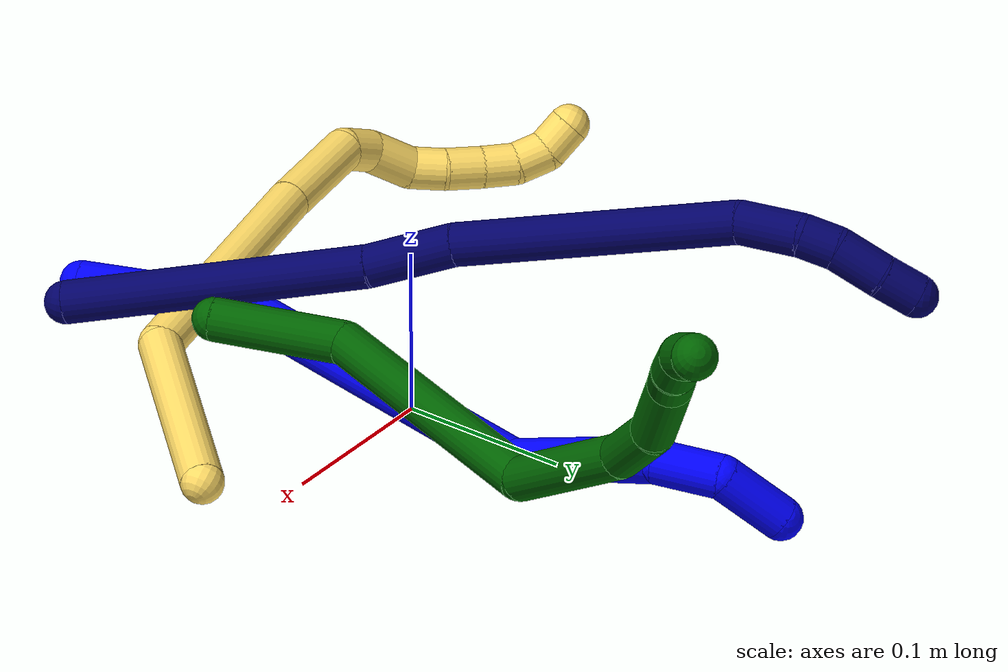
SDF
<sdf version="1.7">
 <world name="default">
  <model name="1">
   <static>0</static>
   <link name="1">
    <collision name="collision-cylinder-e_1_1_4">
     <pose>-0.012604 0.040449 0.024734 -1.02197 -0.259829 0.146238</pose>
     <geometry><cylinder><radius>0.0125</radius><length>0.098118</length></cylinder></geometry>
     <surface>
      <friction><ode><mu>1.16</mu><mu2>1.16</mu2><slip1>0</slip1><slip2>0</slip2></ode></friction>
      <contact><ode><kp>1e+06</kp><kd>1</kd><max_vel>0</max_vel><min_depth>0.001</min_depth></ode></contact>
     </surface>
    </collision>
    <visual name="visual-cylinder-e_1_1_4">
     <pose>-0.012604 0.040449 0.024734 -1.02197 -0.259829 0.146238</pose>
     <geometry><cylinder><radius>0.0125</radius><length>0.098118</length></cylinder></geometry>
     <material><ambient>0 0 1 1</ambient></material>
    </visual>
    <collision name="collision-cylinder-e_2_4_5">
     <pose>-0.001591 0.156109 0.131781 -0.740343 0.208727 -0.081249</pose>
     <geometry><cylinder><radius>0.0125</radius><length>0.227944</length></cylinder></geometry>
     <surface>
      <friction><ode><mu>1.16</mu><mu2>1.16</mu2><slip1>0</slip1><slip2>0</slip2></ode></friction>
      <contact><ode><kp>1e+06</kp><kd>1</kd><max_vel>0</max_vel><min_depth>0.001</min_depth></ode></contact>
     </surface>
    </collision>
    <visual name="visual-cylinder-e_2_4_5">
     <pose>-0.001591 0.156109 0.131781 -0.740343 0.208727 -0.081249</pose>
     <geometry><cylinder><radius>0.0125</radius><length>0.227944</length></cylinder></geometry>
     <material><ambient>0 0 1 1</ambient></material>
    </visual>
    <collision name="collision-cylinder-e_3_5_6">
     <pose>0.015587 0.247237 0.233793 -0.679602 -0.248928 0.088399</pose>
     <geometry><cylinder><radius>0.0125</radius><length>0.052265</length></cylinder></geometry>
     <surface>
      <friction><ode><mu>1.16</mu><mu2>1.16</mu2><slip1>0</slip1><slip2>0</slip2></ode></friction>
      <contact><ode><kp>1e+06</kp><kd>1</kd><max_vel>0</max_vel><min_depth>0.001</min_depth></ode></contact>
     </surface>
    </collision>
    <visual name="visual-cylinder-e_3_5_6">
     <pose>0.015587 0.247237 0.233793 -0.679602 -0.248928 0.088399</pose>
     <geometry><cylinder><radius>0.0125</radius><length>0.052265</length></cylinder></geometry>
     <material><ambient>0 0 1 1</ambient></material>
    </visual>
    <collision name="collision-cylinder-e_4_6_7">
     <pose>0.006537 0.274478 0.271198 -0.569 -0.123623 0.036194</pose>
     <geometry><cylinder><radius>0.0125</radius><length>0.042355</length></cylinder></geometry>
     <surface>
      <friction><ode><mu>1.16</mu><mu2>1.16</mu2><slip1>0</slip1><slip2>0</slip2></ode></friction>
      <contact><ode><kp>1e+06</kp><kd>1</kd><max_vel>0</max_vel><min_depth>0.001</min_depth></ode></contact>
     </surface>
    </collision>
    <visual name="visual-cylinder-e_4_6_7">
     <pose>0.006537 0.274478 0.271198 -0.569 -0.123623 0.036194</pose>
     <geometry><cylinder><radius>0.0125</radius><length>0.042355</length></cylinder></geometry>
     <material><ambient>0 0 1 1</ambient></material>
    </visual>
    <collision name="collision-cylinder-e_5_7_8">
     <pose>0.000444 0.301984 0.298541 -1.03362 -0.182818 0.104098</pose>
     <geometry><cylinder><radius>0.0125</radius><length>0.038309</length></cylinder></geometry>
     <surface>
      <friction><ode><mu>1.16</mu><mu2>1.16</mu2><slip1>0</slip1><slip2>0</slip2></ode></friction>
      <contact><ode><kp>1e+06</kp><kd>1</kd><max_vel>0</max_vel><min_depth>0.001</min_depth></ode></contact>
     </surface>
    </collision>
    <visual name="visual-cylinder-e_5_7_8">
     <pose>0.000444 0.301984 0.298541 -1.03362 -0.182818 0.104098</pose>
     <geometry><cylinder><radius>0.0125</radius><length>0.038309</length></cylinder></geometry>
     <material><ambient>0 0 1 1</ambient></material>
    </visual>
    <collision name="collision-cylinder-e_6_8_2">
     <pose>-0.003802 0.338472 0.305439 -1.7049 -0.03724 0.0426</pose>
     <geometry><cylinder><radius>0.0125</radius><length>0.041008</length></cylinder></geometry>
     <surface>
      <friction><ode><mu>1.16</mu><mu2>1.16</mu2><slip1>0</slip1><slip2>0</slip2></ode></friction>
      <contact><ode><kp>1e+06</kp><kd>1</kd><max_vel>0</max_vel><min_depth>0.001</min_depth></ode></contact>
     </surface>
    </collision>
    <visual name="visual-cylinder-e_6_8_2">
     <pose>-0.003802 0.338472 0.305439 -1.7049 -0.03724 0.0426</pose>
     <geometry><cylinder><radius>0.0125</radius><length>0.041008</length></cylinder></geometry>
     <material><ambient>0 0 1 1</ambient></material>
    </visual>
    <collision name="collision-sphere-2">
     <pose>-0.004565 0.358778 0.3027 0 -0 0</pose>
     <geometry><sphere><radius>0.0125</radius></sphere></geometry>
     <surface>
      <friction><ode><mu>1.16</mu><mu2>1.16</mu2><slip1>0</slip1><slip2>0</slip2></ode></friction>
      <contact><ode><kp>1e+06</kp><kd>1</kd><max_vel>0</max_vel><min_depth>0.001</min_depth></ode></contact>
     </surface>
    </collision>
    <visual name="visual-sphere-2">
     <pose>-0.004565 0.358778 0.3027 0 -0 0</pose>
     <geometry><sphere><radius>0.0125</radius></sphere></geometry>
     <material><ambient>0 0 1 1</ambient></material>
    </visual>
    <collision name="collision-sphere-4">
     <pose>-0.025208 0.080899 0.049469 0 -0 0</pose>
     <geometry><sphere><radius>0.0125</radius></sphere></geometry>
     <surface>
      <friction><ode><mu>1.16</mu><mu2>1.16</mu2><slip1>0</slip1><slip2>0</slip2></ode></friction>
      <contact><ode><kp>1e+06</kp><kd>1</kd><max_vel>0</max_vel><min_depth>0.001</min_depth></ode></contact>
     </surface>
    </collision>
    <visual name="visual-sphere-4">
     <pose>-0.025208 0.080899 0.049469 0 -0 0</pose>
     <geometry><sphere><radius>0.0125</radius></sphere></geometry>
     <material><ambient>0 0 1 1</ambient></material>
    </visual>
    <collision name="collision-sphere-1">
     <geometry><sphere><radius>0.0125</radius></sphere></geometry>
     <surface>
      <friction><ode><mu>1.16</mu><mu2>1.16</mu2><slip1>0</slip1><slip2>0</slip2></ode></friction>
      <contact><ode><kp>1e+06</kp><kd>1</kd><max_vel>0</max_vel><min_depth>0.001</min_depth></ode></contact>
     </surface>
    </collision>
    <visual name="visual-sphere-1">
     <geometry><sphere><radius>0.0125</radius></sphere></geometry>
     <material><ambient>0 0 1 1</ambient></material>
    </visual>
    <collision name="collision-sphere-8">
     <pose>-0.003038 0.318166 0.308179 0 -0 0</pose>
     <geometry><sphere><radius>0.0125</radius></sphere></geometry>
     <surface>
      <friction><ode><mu>1.16</mu><mu2>1.16</mu2><slip1>0</slip1><slip2>0</slip2></ode></friction>
      <contact><ode><kp>1e+06</kp><kd>1</kd><max_vel>0</max_vel><min_depth>0.001</min_depth></ode></contact>
     </surface>
    </collision>
    <visual name="visual-sphere-8">
     <pose>-0.003038 0.318166 0.308179 0 -0 0</pose>
     <geometry><sphere><radius>0.0125</radius></sphere></geometry>
     <material><ambient>0 0 1 1</ambient></material>
    </visual>
    <collision name="collision-sphere-5">
     <pose>0.022025 0.231319 0.214093 0 -0 0</pose>
     <geometry><sphere><radius>0.0125</radius></sphere></geometry>
     <surface>
      <friction><ode><mu>1.16</mu><mu2>1.16</mu2><slip1>0</slip1><slip2>0</slip2></ode></friction>
      <contact><ode><kp>1e+06</kp><kd>1</kd><max_vel>0</max_vel><min_depth>0.001</min_depth></ode></contact>
     </surface>
    </collision>
    <visual name="visual-sphere-5">
     <pose>0.022025 0.231319 0.214093 0 -0 0</pose>
     <geometry><sphere><radius>0.0125</radius></sphere></geometry>
     <material><ambient>0 0 1 1</ambient></material>
    </visual>
    <collision name="collision-sphere-6">
     <pose>0.009149 0.263155 0.253493 0 -0 0</pose>
     <geometry><sphere><radius>0.0125</radius></sphere></geometry>
     <surface>
      <friction><ode><mu>1.16</mu><mu2>1.16</mu2><slip1>0</slip1><slip2>0</slip2></ode></friction>
      <contact><ode><kp>1e+06</kp><kd>1</kd><max_vel>0</max_vel><min_depth>0.001</min_depth></ode></contact>
     </surface>
    </collision>
    <visual name="visual-sphere-6">
     <pose>0.009149 0.263155 0.253493 0 -0 0</pose>
     <geometry><sphere><radius>0.0125</radius></sphere></geometry>
     <material><ambient>0 0 1 1</ambient></material>
    </visual>
    <collision name="collision-sphere-7">
     <pose>0.003926 0.285801 0.288903 0 -0 0</pose>
     <geometry><sphere><radius>0.0125</radius></sphere></geometry>
     <surface>
      <friction><ode><mu>1.16</mu><mu2>1.16</mu2><slip1>0</slip1><slip2>0</slip2></ode></friction>
      <contact><ode><kp>1e+06</kp><kd>1</kd><max_vel>0</max_vel><min_depth>0.001</min_depth></ode></contact>
     </surface>
    </collision>
    <visual name="visual-sphere-7">
     <pose>0.003926 0.285801 0.288903 0 -0 0</pose>
     <geometry><sphere><radius>0.0125</radius></sphere></geometry>
     <material><ambient>0 0 1 1</ambient></material>
    </visual>
    <inertial>
     <pose>-0.001294 0.179098 0.160267 0 -0 0</pose>
     <mass>0.5</mass>
     <inertia>
      <ixx>0.001019</ixx>
      <ixy>0</ixy>
      <ixz>0</ixz>
      <iyy>0.000772</iyy>
      <iyz>0</iyz>
      <izz>-0.000906</izz>
     </inertia>
    </inertial>
   </link>
   <pose>0.014996 -0.226043 0.011495 -0.705297 0.535129 0.046117</pose>
  </model>
  <model name="5">
   <static>0</static>
   <link name="5">
    <collision name="collision-cylinder-e_1_1_4">
     <pose>-0.040937 -0.013927 0.043755 0.308165 -0.728119 -0.118225</pose>
     <geometry><cylinder><radius>0.0125</radius><length>0.123033</length></cylinder></geometry>
     <surface>
      <friction><ode><mu>1.16</mu><mu2>1.16</mu2><slip1>0</slip1><slip2>0</slip2></ode></friction>
      <contact><ode><kp>1e+06</kp><kd>1</kd><max_vel>0</max_vel><min_depth>0.001</min_depth></ode></contact>
     </surface>
    </collision>
    <visual name="visual-cylinder-e_1_1_4">
     <pose>-0.040937 -0.013927 0.043755 0.308165 -0.728119 -0.118225</pose>
     <geometry><cylinder><radius>0.0125</radius><length>0.123033</length></cylinder></geometry>
     <material><ambient>1 0.858824 0.4 1</ambient></material>
    </visual>
    <collision name="collision-cylinder-e_2_4_5">
     <pose>-0.106438 -0.003813 0.158946 -0.324634 -0.315029 0.052008</pose>
     <geometry><cylinder><radius>0.0125</radius><length>0.158551</length></cylinder></geometry>
     <surface>
      <friction><ode><mu>1.16</mu><mu2>1.16</mu2><slip1>0</slip1><slip2>0</slip2></ode></friction>
      <contact><ode><kp>1e+06</kp><kd>1</kd><max_vel>0</max_vel><min_depth>0.001</min_depth></ode></contact>
     </surface>
    </collision>
    <visual name="visual-cylinder-e_2_4_5">
     <pose>-0.106438 -0.003813 0.158946 -0.324634 -0.315029 0.052008</pose>
     <geometry><cylinder><radius>0.0125</radius><length>0.158551</length></cylinder></geometry>
     <material><ambient>1 0.858824 0.4 1</ambient></material>
    </visual>
    <collision name="collision-cylinder-e_3_5_6">
     <pose>-0.140408 0.031616 0.258768 -0.381532 -0.298401 0.058041</pose>
     <geometry><cylinder><radius>0.0125</radius><length>0.063995</length></cylinder></geometry>
     <surface>
      <friction><ode><mu>1.16</mu><mu2>1.16</mu2><slip1>0</slip1><slip2>0</slip2></ode></friction>
      <contact><ode><kp>1e+06</kp><kd>1</kd><max_vel>0</max_vel><min_depth>0.001</min_depth></ode></contact>
     </surface>
    </collision>
    <visual name="visual-cylinder-e_3_5_6">
     <pose>-0.140408 0.031616 0.258768 -0.381532 -0.298401 0.058041</pose>
     <geometry><cylinder><radius>0.0125</radius><length>0.063995</length></cylinder></geometry>
     <material><ambient>1 0.858824 0.4 1</ambient></material>
    </visual>
    <collision name="collision-cylinder-e_4_6_7">
     <pose>-0.152702 0.051463 0.293064 -0.960914 -0.272752 0.142801</pose>
     <geometry><cylinder><radius>0.0125</radius><length>0.021433</length></cylinder></geometry>
     <surface>
      <friction><ode><mu>1.16</mu><mu2>1.16</mu2><slip1>0</slip1><slip2>0</slip2></ode></friction>
      <contact><ode><kp>1e+06</kp><kd>1</kd><max_vel>0</max_vel><min_depth>0.001</min_depth></ode></contact>
     </surface>
    </collision>
    <visual name="visual-cylinder-e_4_6_7">
     <pose>-0.152702 0.051463 0.293064 -0.960914 -0.272752 0.142801</pose>
     <geometry><cylinder><radius>0.0125</radius><length>0.021433</length></cylinder></geometry>
     <material><ambient>1 0.858824 0.4 1</ambient></material>
    </visual>
    <collision name="collision-cylinder-e_5_7_8">
     <pose>-0.155901 0.073881 0.302772 -1.30518 -0.021619 0.016524</pose>
     <geometry><cylinder><radius>0.0125</radius><length>0.028938</length></cylinder></geometry>
     <surface>
      <friction><ode><mu>1.16</mu><mu2>1.16</mu2><slip1>0</slip1><slip2>0</slip2></ode></friction>
      <contact><ode><kp>1e+06</kp><kd>1</kd><max_vel>0</max_vel><min_depth>0.001</min_depth></ode></contact>
     </surface>
    </collision>
    <visual name="visual-cylinder-e_5_7_8">
     <pose>-0.155901 0.073881 0.302772 -1.30518 -0.021619 0.016524</pose>
     <geometry><cylinder><radius>0.0125</radius><length>0.028938</length></cylinder></geometry>
     <material><ambient>1 0.858824 0.4 1</ambient></material>
    </visual>
    <collision name="collision-cylinder-e_6_8_9">
     <pose>-0.151945 0.096188 0.310953 -1.08726 0.425139 -0.25942</pose>
     <geometry><cylinder><radius>0.0125</radius><length>0.020702</length></cylinder></geometry>
     <surface>
      <friction><ode><mu>1.16</mu><mu2>1.16</mu2><slip1>0</slip1><slip2>0</slip2></ode></friction>
      <contact><ode><kp>1e+06</kp><kd>1</kd><max_vel>0</max_vel><min_depth>0.001</min_depth></ode></contact>
     </surface>
    </collision>
    <visual name="visual-cylinder-e_6_8_9">
     <pose>-0.151945 0.096188 0.310953 -1.08726 0.425139 -0.25942</pose>
     <geometry><cylinder><radius>0.0125</radius><length>0.020702</length></cylinder></geometry>
     <material><ambient>1 0.858824 0.4 1</ambient></material>
    </visual>
    <collision name="collision-cylinder-e_7_9_10">
     <pose>-0.14459 0.113222 0.321606 -0.945552 0.280487 -0.144157</pose>
     <geometry><cylinder><radius>0.0125</radius><length>0.022293</length></cylinder></geometry>
     <surface>
      <friction><ode><mu>1.16</mu><mu2>1.16</mu2><slip1>0</slip1><slip2>0</slip2></ode></friction>
      <contact><ode><kp>1e+06</kp><kd>1</kd><max_vel>0</max_vel><min_depth>0.001</min_depth></ode></contact>
     </surface>
    </collision>
    <visual name="visual-cylinder-e_7_9_10">
     <pose>-0.14459 0.113222 0.321606 -0.945552 0.280487 -0.144157</pose>
     <geometry><cylinder><radius>0.0125</radius><length>0.022293</length></cylinder></geometry>
     <material><ambient>1 0.858824 0.4 1</ambient></material>
    </visual>
    <collision name="collision-cylinder-e_8_10_11">
     <pose>-0.137825 0.129633 0.333814 -0.915483 0.360983 -0.179309</pose>
     <geometry><cylinder><radius>0.0125</radius><length>0.020833</length></cylinder></geometry>
     <surface>
      <friction><ode><mu>1.16</mu><mu2>1.16</mu2><slip1>0</slip1><slip2>0</slip2></ode></friction>
      <contact><ode><kp>1e+06</kp><kd>1</kd><max_vel>0</max_vel><min_depth>0.001</min_depth></ode></contact>
     </surface>
    </collision>
    <visual name="visual-cylinder-e_8_10_11">
     <pose>-0.137825 0.129633 0.333814 -0.915483 0.360983 -0.179309</pose>
     <geometry><cylinder><radius>0.0125</radius><length>0.020833</length></cylinder></geometry>
     <material><ambient>1 0.858824 0.4 1</ambient></material>
    </visual>
    <collision name="collision-cylinder-e_9_11_12">
     <pose>-0.130393 0.142562 0.347504 -0.591168 0.382258 -0.117702</pose>
     <geometry><cylinder><radius>0.0125</radius><length>0.020124</length></cylinder></geometry>
     <surface>
      <friction><ode><mu>1.16</mu><mu2>1.16</mu2><slip1>0</slip1><slip2>0</slip2></ode></friction>
      <contact><ode><kp>1e+06</kp><kd>1</kd><max_vel>0</max_vel><min_depth>0.001</min_depth></ode></contact>
     </surface>
    </collision>
    <visual name="visual-cylinder-e_9_11_12">
     <pose>-0.130393 0.142562 0.347504 -0.591168 0.382258 -0.117702</pose>
     <geometry><cylinder><radius>0.0125</radius><length>0.020124</length></cylinder></geometry>
     <material><ambient>1 0.858824 0.4 1</ambient></material>
    </visual>
    <collision name="collision-cylinder-e_10_12_2">
     <pose>-0.12194 0.148402 0.364115 -0.071791 0.486728 -0.017832</pose>
     <geometry><cylinder><radius>0.0125</radius><length>0.020097</length></cylinder></geometry>
     <surface>
      <friction><ode><mu>1.16</mu><mu2>1.16</mu2><slip1>0</slip1><slip2>0</slip2></ode></friction>
      <contact><ode><kp>1e+06</kp><kd>1</kd><max_vel>0</max_vel><min_depth>0.001</min_depth></ode></contact>
     </surface>
    </collision>
    <visual name="visual-cylinder-e_10_12_2">
     <pose>-0.12194 0.148402 0.364115 -0.071791 0.486728 -0.017832</pose>
     <geometry><cylinder><radius>0.0125</radius><length>0.020097</length></cylinder></geometry>
     <material><ambient>1 0.858824 0.4 1</ambient></material>
    </visual>
    <collision name="collision-sphere-2">
     <pose>-0.117239 0.14904 0.372973 0 -0 0</pose>
     <geometry><sphere><radius>0.0125</radius></sphere></geometry>
     <surface>
      <friction><ode><mu>1.16</mu><mu2>1.16</mu2><slip1>0</slip1><slip2>0</slip2></ode></friction>
      <contact><ode><kp>1e+06</kp><kd>1</kd><max_vel>0</max_vel><min_depth>0.001</min_depth></ode></contact>
     </surface>
    </collision>
    <visual name="visual-sphere-2">
     <pose>-0.117239 0.14904 0.372973 0 -0 0</pose>
     <geometry><sphere><radius>0.0125</radius></sphere></geometry>
     <material><ambient>1 0.858824 0.4 1</ambient></material>
    </visual>
    <collision name="collision-sphere-12">
     <pose>-0.12664 0.147765 0.355256 0 -0 0</pose>
     <geometry><sphere><radius>0.0125</radius></sphere></geometry>
     <surface>
      <friction><ode><mu>1.16</mu><mu2>1.16</mu2><slip1>0</slip1><slip2>0</slip2></ode></friction>
      <contact><ode><kp>1e+06</kp><kd>1</kd><max_vel>0</max_vel><min_depth>0.001</min_depth></ode></contact>
     </surface>
    </collision>
    <visual name="visual-sphere-12">
     <pose>-0.12664 0.147765 0.355256 0 -0 0</pose>
     <geometry><sphere><radius>0.0125</radius></sphere></geometry>
     <material><ambient>1 0.858824 0.4 1</ambient></material>
    </visual>
    <collision name="collision-sphere-11">
     <pose>-0.134146 0.137359 0.339753 0 -0 0</pose>
     <geometry><sphere><radius>0.0125</radius></sphere></geometry>
     <surface>
      <friction><ode><mu>1.16</mu><mu2>1.16</mu2><slip1>0</slip1><slip2>0</slip2></ode></friction>
      <contact><ode><kp>1e+06</kp><kd>1</kd><max_vel>0</max_vel><min_depth>0.001</min_depth></ode></contact>
     </surface>
    </collision>
    <visual name="visual-sphere-11">
     <pose>-0.134146 0.137359 0.339753 0 -0 0</pose>
     <geometry><sphere><radius>0.0125</radius></sphere></geometry>
     <material><ambient>1 0.858824 0.4 1</ambient></material>
    </visual>
    <collision name="collision-sphere-10">
     <pose>-0.141504 0.121906 0.327875 0 -0 0</pose>
     <geometry><sphere><radius>0.0125</radius></sphere></geometry>
     <surface>
      <friction><ode><mu>1.16</mu><mu2>1.16</mu2><slip1>0</slip1><slip2>0</slip2></ode></friction>
      <contact><ode><kp>1e+06</kp><kd>1</kd><max_vel>0</max_vel><min_depth>0.001</min_depth></ode></contact>
     </surface>
    </collision>
    <visual name="visual-sphere-10">
     <pose>-0.141504 0.121906 0.327875 0 -0 0</pose>
     <geometry><sphere><radius>0.0125</radius></sphere></geometry>
     <material><ambient>1 0.858824 0.4 1</ambient></material>
    </visual>
    <collision name="collision-sphere-9">
     <pose>-0.147676 0.104537 0.315337 0 -0 0</pose>
     <geometry><sphere><radius>0.0125</radius></sphere></geometry>
     <surface>
      <friction><ode><mu>1.16</mu><mu2>1.16</mu2><slip1>0</slip1><slip2>0</slip2></ode></friction>
      <contact><ode><kp>1e+06</kp><kd>1</kd><max_vel>0</max_vel><min_depth>0.001</min_depth></ode></contact>
     </surface>
    </collision>
    <visual name="visual-sphere-9">
     <pose>-0.147676 0.104537 0.315337 0 -0 0</pose>
     <geometry><sphere><radius>0.0125</radius></sphere></geometry>
     <material><ambient>1 0.858824 0.4 1</ambient></material>
    </visual>
    <collision name="collision-sphere-4">
     <pose>-0.081875 -0.027855 0.087509 0 -0 0</pose>
     <geometry><sphere><radius>0.0125</radius></sphere></geometry>
     <surface>
      <friction><ode><mu>1.16</mu><mu2>1.16</mu2><slip1>0</slip1><slip2>0</slip2></ode></friction>
      <contact><ode><kp>1e+06</kp><kd>1</kd><max_vel>0</max_vel><min_depth>0.001</min_depth></ode></contact>
     </surface>
    </collision>
    <visual name="visual-sphere-4">
     <pose>-0.081875 -0.027855 0.087509 0 -0 0</pose>
     <geometry><sphere><radius>0.0125</radius></sphere></geometry>
     <material><ambient>1 0.858824 0.4 1</ambient></material>
    </visual>
    <collision name="collision-sphere-1">
     <geometry><sphere><radius>0.0125</radius></sphere></geometry>
     <surface>
      <friction><ode><mu>1.16</mu><mu2>1.16</mu2><slip1>0</slip1><slip2>0</slip2></ode></friction>
      <contact><ode><kp>1e+06</kp><kd>1</kd><max_vel>0</max_vel><min_depth>0.001</min_depth></ode></contact>
     </surface>
    </collision>
    <visual name="visual-sphere-1">
     <geometry><sphere><radius>0.0125</radius></sphere></geometry>
     <material><ambient>1 0.858824 0.4 1</ambient></material>
    </visual>
    <collision name="collision-sphere-8">
     <pose>-0.156214 0.08784 0.306569 0 -0 0</pose>
     <geometry><sphere><radius>0.0125</radius></sphere></geometry>
     <surface>
      <friction><ode><mu>1.16</mu><mu2>1.16</mu2><slip1>0</slip1><slip2>0</slip2></ode></friction>
      <contact><ode><kp>1e+06</kp><kd>1</kd><max_vel>0</max_vel><min_depth>0.001</min_depth></ode></contact>
     </surface>
    </collision>
    <visual name="visual-sphere-8">
     <pose>-0.156214 0.08784 0.306569 0 -0 0</pose>
     <geometry><sphere><radius>0.0125</radius></sphere></geometry>
     <material><ambient>1 0.858824 0.4 1</ambient></material>
    </visual>
    <collision name="collision-sphere-5">
     <pose>-0.131001 0.020228 0.230383 0 -0 0</pose>
     <geometry><sphere><radius>0.0125</radius></sphere></geometry>
     <surface>
      <friction><ode><mu>1.16</mu><mu2>1.16</mu2><slip1>0</slip1><slip2>0</slip2></ode></friction>
      <contact><ode><kp>1e+06</kp><kd>1</kd><max_vel>0</max_vel><min_depth>0.001</min_depth></ode></contact>
     </surface>
    </collision>
    <visual name="visual-sphere-5">
     <pose>-0.131001 0.020228 0.230383 0 -0 0</pose>
     <geometry><sphere><radius>0.0125</radius></sphere></geometry>
     <material><ambient>1 0.858824 0.4 1</ambient></material>
    </visual>
    <collision name="collision-sphere-6">
     <pose>-0.149815 0.043004 0.287152 0 -0 0</pose>
     <geometry><sphere><radius>0.0125</radius></sphere></geometry>
     <surface>
      <friction><ode><mu>1.16</mu><mu2>1.16</mu2><slip1>0</slip1><slip2>0</slip2></ode></friction>
      <contact><ode><kp>1e+06</kp><kd>1</kd><max_vel>0</max_vel><min_depth>0.001</min_depth></ode></contact>
     </surface>
    </collision>
    <visual name="visual-sphere-6">
     <pose>-0.149815 0.043004 0.287152 0 -0 0</pose>
     <geometry><sphere><radius>0.0125</radius></sphere></geometry>
     <material><ambient>1 0.858824 0.4 1</ambient></material>
    </visual>
    <collision name="collision-sphere-7">
     <pose>-0.155588 0.059923 0.298975 0 -0 0</pose>
     <geometry><sphere><radius>0.0125</radius></sphere></geometry>
     <surface>
      <friction><ode><mu>1.16</mu><mu2>1.16</mu2><slip1>0</slip1><slip2>0</slip2></ode></friction>
      <contact><ode><kp>1e+06</kp><kd>1</kd><max_vel>0</max_vel><min_depth>0.001</min_depth></ode></contact>
     </surface>
    </collision>
    <visual name="visual-sphere-7">
     <pose>-0.155588 0.059923 0.298975 0 -0 0</pose>
     <geometry><sphere><radius>0.0125</radius></sphere></geometry>
     <material><ambient>1 0.858824 0.4 1</ambient></material>
    </visual>
    <inertial>
     <pose>-0.105994 0.032027 0.194119 0 -0 0</pose>
     <mass>0.5</mass>
     <inertia>
      <ixx>0.000469</ixx>
      <ixy>0</ixy>
      <ixz>0</ixz>
      <iyy>0.000522</iyy>
      <iyz>0</iyz>
      <izz>0.000161</izz>
     </inertia>
    </inertial>
   </link>
   <pose>0.145408 -0.034162 0.011522 -0.929676 -0.579401 1.31799</pose>
  </model>
  <model name="6">
   <static>0</static>
   <link name="6">
    <collision name="collision-cylinder-e_1_1_4">
     <pose>-0.00852 0.035258 0.013443 -1.20653 -0.222059 0.153317</pose>
     <geometry><cylinder><radius>0.0125</radius><length>0.077367</length></cylinder></geometry>
     <surface>
      <friction><ode><mu>1.16</mu><mu2>1.16</mu2><slip1>0</slip1><slip2>0</slip2></ode></friction>
      <contact><ode><kp>1e+06</kp><kd>1</kd><max_vel>0</max_vel><min_depth>0.001</min_depth></ode></contact>
     </surface>
    </collision>
    <visual name="visual-cylinder-e_1_1_4">
     <pose>-0.00852 0.035258 0.013443 -1.20653 -0.222059 0.153317</pose>
     <geometry><cylinder><radius>0.0125</radius><length>0.077367</length></cylinder></geometry>
     <material><ambient>0 0.392157 0.003922 1</ambient></material>
    </visual>
    <collision name="collision-cylinder-e_2_4_5">
     <pose>0.006753 0.129302 0.080388 -0.832421 0.290831 -0.129291</pose>
     <geometry><cylinder><radius>0.0125</radius><length>0.165944</length></cylinder></geometry>
     <surface>
      <friction><ode><mu>1.16</mu><mu2>1.16</mu2><slip1>0</slip1><slip2>0</slip2></ode></friction>
      <contact><ode><kp>1e+06</kp><kd>1</kd><max_vel>0</max_vel><min_depth>0.001</min_depth></ode></contact>
     </surface>
    </collision>
    <visual name="visual-cylinder-e_2_4_5">
     <pose>0.006753 0.129302 0.080388 -0.832421 0.290831 -0.129291</pose>
     <geometry><cylinder><radius>0.0125</radius><length>0.165944</length></cylinder></geometry>
     <material><ambient>0 0.392157 0.003922 1</ambient></material>
    </visual>
    <collision name="collision-cylinder-e_3_5_6">
     <pose>0.021542 0.20765 0.171305 -0.481757 -0.2101 0.05179</pose>
     <geometry><cylinder><radius>0.0125</radius><length>0.086339</length></cylinder></geometry>
     <surface>
      <friction><ode><mu>1.16</mu><mu2>1.16</mu2><slip1>0</slip1><slip2>0</slip2></ode></friction>
      <contact><ode><kp>1e+06</kp><kd>1</kd><max_vel>0</max_vel><min_depth>0.001</min_depth></ode></contact>
     </surface>
    </collision>
    <visual name="visual-cylinder-e_3_5_6">
     <pose>0.021542 0.20765 0.171305 -0.481757 -0.2101 0.05179</pose>
     <geometry><cylinder><radius>0.0125</radius><length>0.086339</length></cylinder></geometry>
     <material><ambient>0 0.392157 0.003922 1</ambient></material>
    </visual>
    <collision name="collision-cylinder-e_4_6_7">
     <pose>0.00814 0.230946 0.229689 -0.176212 -0.203655 0.018052</pose>
     <geometry><cylinder><radius>0.0125</radius><length>0.043497</length></cylinder></geometry>
     <surface>
      <friction><ode><mu>1.16</mu><mu2>1.16</mu2><slip1>0</slip1><slip2>0</slip2></ode></friction>
      <contact><ode><kp>1e+06</kp><kd>1</kd><max_vel>0</max_vel><min_depth>0.001</min_depth></ode></contact>
     </surface>
    </collision>
    <visual name="visual-cylinder-e_4_6_7">
     <pose>0.00814 0.230946 0.229689 -0.176212 -0.203655 0.018052</pose>
     <geometry><cylinder><radius>0.0125</radius><length>0.043497</length></cylinder></geometry>
     <material><ambient>0 0.392157 0.003922 1</ambient></material>
    </visual>
    <collision name="collision-cylinder-e_5_7_8">
     <pose>-0.003802 0.232154 0.272733 0.113935 -0.327291 -0.018833</pose>
     <geometry><cylinder><radius>0.0125</radius><length>0.046929</length></cylinder></geometry>
     <surface>
      <friction><ode><mu>1.16</mu><mu2>1.16</mu2><slip1>0</slip1><slip2>0</slip2></ode></friction>
      <contact><ode><kp>1e+06</kp><kd>1</kd><max_vel>0</max_vel><min_depth>0.001</min_depth></ode></contact>
     </surface>
    </collision>
    <visual name="visual-cylinder-e_5_7_8">
     <pose>-0.003802 0.232154 0.272733 0.113935 -0.327291 -0.018833</pose>
     <geometry><cylinder><radius>0.0125</radius><length>0.046929</length></cylinder></geometry>
     <material><ambient>0 0.392157 0.003922 1</ambient></material>
    </visual>
    <collision name="collision-cylinder-e_6_8_9">
     <pose>-0.010073 0.228295 0.312244 0.076294 0.07264 0.002774</pose>
     <geometry><cylinder><radius>0.0125</radius><length>0.035065</length></cylinder></geometry>
     <surface>
      <friction><ode><mu>1.16</mu><mu2>1.16</mu2><slip1>0</slip1><slip2>0</slip2></ode></friction>
      <contact><ode><kp>1e+06</kp><kd>1</kd><max_vel>0</max_vel><min_depth>0.001</min_depth></ode></contact>
     </surface>
    </collision>
    <visual name="visual-cylinder-e_6_8_9">
     <pose>-0.010073 0.228295 0.312244 0.076294 0.07264 0.002774</pose>
     <geometry><cylinder><radius>0.0125</radius><length>0.035065</length></cylinder></geometry>
     <material><ambient>0 0.392157 0.003922 1</ambient></material>
    </visual>
    <collision name="collision-cylinder-e_7_9_10">
     <pose>-0.010266 0.226478 0.340925 0.043039 -0.129411 -0.002789</pose>
     <geometry><cylinder><radius>0.0125</radius><length>0.022701</length></cylinder></geometry>
     <surface>
      <friction><ode><mu>1.16</mu><mu2>1.16</mu2><slip1>0</slip1><slip2>0</slip2></ode></friction>
      <contact><ode><kp>1e+06</kp><kd>1</kd><max_vel>0</max_vel><min_depth>0.001</min_depth></ode></contact>
     </surface>
    </collision>
    <visual name="visual-cylinder-e_7_9_10">
     <pose>-0.010266 0.226478 0.340925 0.043039 -0.129411 -0.002789</pose>
     <geometry><cylinder><radius>0.0125</radius><length>0.022701</length></cylinder></geometry>
     <material><ambient>0 0.392157 0.003922 1</ambient></material>
    </visual>
    <collision name="collision-cylinder-e_8_10_2">
     <pose>-0.010097 0.228297 0.362883 -0.211801 0.147935 -0.015754</pose>
     <geometry><cylinder><radius>0.0125</radius><length>0.022157</length></cylinder></geometry>
     <surface>
      <friction><ode><mu>1.16</mu><mu2>1.16</mu2><slip1>0</slip1><slip2>0</slip2></ode></friction>
      <contact><ode><kp>1e+06</kp><kd>1</kd><max_vel>0</max_vel><min_depth>0.001</min_depth></ode></contact>
     </surface>
    </collision>
    <visual name="visual-cylinder-e_8_10_2">
     <pose>-0.010097 0.228297 0.362883 -0.211801 0.147935 -0.015754</pose>
     <geometry><cylinder><radius>0.0125</radius><length>0.022157</length></cylinder></geometry>
     <material><ambient>0 0.392157 0.003922 1</ambient></material>
    </visual>
    <collision name="collision-sphere-2">
     <pose>-0.008464 0.230601 0.373596 0 -0 0</pose>
     <geometry><sphere><radius>0.0125</radius></sphere></geometry>
     <surface>
      <friction><ode><mu>1.16</mu><mu2>1.16</mu2><slip1>0</slip1><slip2>0</slip2></ode></friction>
      <contact><ode><kp>1e+06</kp><kd>1</kd><max_vel>0</max_vel><min_depth>0.001</min_depth></ode></contact>
     </surface>
    </collision>
    <visual name="visual-sphere-2">
     <pose>-0.008464 0.230601 0.373596 0 -0 0</pose>
     <geometry><sphere><radius>0.0125</radius></sphere></geometry>
     <material><ambient>0 0.392157 0.003922 1</ambient></material>
    </visual>
    <collision name="collision-sphere-10">
     <pose>-0.01173 0.225993 0.35217 0 -0 0</pose>
     <geometry><sphere><radius>0.0125</radius></sphere></geometry>
     <surface>
      <friction><ode><mu>1.16</mu><mu2>1.16</mu2><slip1>0</slip1><slip2>0</slip2></ode></friction>
      <contact><ode><kp>1e+06</kp><kd>1</kd><max_vel>0</max_vel><min_depth>0.001</min_depth></ode></contact>
     </surface>
    </collision>
    <visual name="visual-sphere-10">
     <pose>-0.01173 0.225993 0.35217 0 -0 0</pose>
     <geometry><sphere><radius>0.0125</radius></sphere></geometry>
     <material><ambient>0 0.392157 0.003922 1</ambient></material>
    </visual>
    <collision name="collision-sphere-9">
     <pose>-0.008801 0.226962 0.329679 0 -0 0</pose>
     <geometry><sphere><radius>0.0125</radius></sphere></geometry>
     <surface>
      <friction><ode><mu>1.16</mu><mu2>1.16</mu2><slip1>0</slip1><slip2>0</slip2></ode></friction>
      <contact><ode><kp>1e+06</kp><kd>1</kd><max_vel>0</max_vel><min_depth>0.001</min_depth></ode></contact>
     </surface>
    </collision>
    <visual name="visual-sphere-9">
     <pose>-0.008801 0.226962 0.329679 0 -0 0</pose>
     <geometry><sphere><radius>0.0125</radius></sphere></geometry>
     <material><ambient>0 0.392157 0.003922 1</ambient></material>
    </visual>
    <collision name="collision-sphere-4">
     <pose>-0.017039 0.070515 0.026886 0 -0 0</pose>
     <geometry><sphere><radius>0.0125</radius></sphere></geometry>
     <surface>
      <friction><ode><mu>1.16</mu><mu2>1.16</mu2><slip1>0</slip1><slip2>0</slip2></ode></friction>
      <contact><ode><kp>1e+06</kp><kd>1</kd><max_vel>0</max_vel><min_depth>0.001</min_depth></ode></contact>
     </surface>
    </collision>
    <visual name="visual-sphere-4">
     <pose>-0.017039 0.070515 0.026886 0 -0 0</pose>
     <geometry><sphere><radius>0.0125</radius></sphere></geometry>
     <material><ambient>0 0.392157 0.003922 1</ambient></material>
    </visual>
    <collision name="collision-sphere-1">
     <geometry><sphere><radius>0.0125</radius></sphere></geometry>
     <surface>
      <friction><ode><mu>1.16</mu><mu2>1.16</mu2><slip1>0</slip1><slip2>0</slip2></ode></friction>
      <contact><ode><kp>1e+06</kp><kd>1</kd><max_vel>0</max_vel><min_depth>0.001</min_depth></ode></contact>
     </surface>
    </collision>
    <visual name="visual-sphere-1">
     <geometry><sphere><radius>0.0125</radius></sphere></geometry>
     <material><ambient>0 0.392157 0.003922 1</ambient></material>
    </visual>
    <collision name="collision-sphere-8">
     <pose>-0.011346 0.229628 0.294808 0 -0 0</pose>
     <geometry><sphere><radius>0.0125</radius></sphere></geometry>
     <surface>
      <friction><ode><mu>1.16</mu><mu2>1.16</mu2><slip1>0</slip1><slip2>0</slip2></ode></friction>
      <contact><ode><kp>1e+06</kp><kd>1</kd><max_vel>0</max_vel><min_depth>0.001</min_depth></ode></contact>
     </surface>
    </collision>
    <visual name="visual-sphere-8">
     <pose>-0.011346 0.229628 0.294808 0 -0 0</pose>
     <geometry><sphere><radius>0.0125</radius></sphere></geometry>
     <material><ambient>0 0.392157 0.003922 1</ambient></material>
    </visual>
    <collision name="collision-sphere-5">
     <pose>0.030545 0.188088 0.13389 0 -0 0</pose>
     <geometry><sphere><radius>0.0125</radius></sphere></geometry>
     <surface>
      <friction><ode><mu>1.16</mu><mu2>1.16</mu2><slip1>0</slip1><slip2>0</slip2></ode></friction>
      <contact><ode><kp>1e+06</kp><kd>1</kd><max_vel>0</max_vel><min_depth>0.001</min_depth></ode></contact>
     </surface>
    </collision>
    <visual name="visual-sphere-5">
     <pose>0.030545 0.188088 0.13389 0 -0 0</pose>
     <geometry><sphere><radius>0.0125</radius></sphere></geometry>
     <material><ambient>0 0.392157 0.003922 1</ambient></material>
    </visual>
    <collision name="collision-sphere-6">
     <pose>0.012538 0.227212 0.20872 0 -0 0</pose>
     <geometry><sphere><radius>0.0125</radius></sphere></geometry>
     <surface>
      <friction><ode><mu>1.16</mu><mu2>1.16</mu2><slip1>0</slip1><slip2>0</slip2></ode></friction>
      <contact><ode><kp>1e+06</kp><kd>1</kd><max_vel>0</max_vel><min_depth>0.001</min_depth></ode></contact>
     </surface>
    </collision>
    <visual name="visual-sphere-6">
     <pose>0.012538 0.227212 0.20872 0 -0 0</pose>
     <geometry><sphere><radius>0.0125</radius></sphere></geometry>
     <material><ambient>0 0.392157 0.003922 1</ambient></material>
    </visual>
    <collision name="collision-sphere-7">
     <pose>0.003741 0.23468 0.250659 0 -0 0</pose>
     <geometry><sphere><radius>0.0125</radius></sphere></geometry>
     <surface>
      <friction><ode><mu>1.16</mu><mu2>1.16</mu2><slip1>0</slip1><slip2>0</slip2></ode></friction>
      <contact><ode><kp>1e+06</kp><kd>1</kd><max_vel>0</max_vel><min_depth>0.001</min_depth></ode></contact>
     </surface>
    </collision>
    <visual name="visual-sphere-7">
     <pose>0.003741 0.23468 0.250659 0 -0 0</pose>
     <geometry><sphere><radius>0.0125</radius></sphere></geometry>
     <material><ambient>0 0.392157 0.003922 1</ambient></material>
    </visual>
    <inertial>
     <pose>0.003374 0.162516 0.157378 0 -0 0</pose>
     <mass>0.5</mass>
     <inertia>
      <ixx>0.000451</ixx>
      <ixy>0</ixy>
      <ixz>0</ixz>
      <iyy>0.000342</iyy>
      <iyz>0</iyz>
      <izz>-0.000395</izz>
     </inertia>
    </inertial>
   </link>
   <pose>0.070428 -0.084253 0.062095 -0.550575 0.647119 0.027896</pose>
  </model>
  <model name="7">
   <static>0</static>
   <link name="7">
    <collision name="collision-cylinder-e_1_1_4">
     <pose>-0.012088 0.026582 0.083473 -0.308299 -0.137115 0.021338</pose>
     <geometry><cylinder><radius>0.0125</radius><length>0.176868</length></cylinder></geometry>
     <surface>
      <friction><ode><mu>1.16</mu><mu2>1.16</mu2><slip1>0</slip1><slip2>0</slip2></ode></friction>
      <contact><ode><kp>1e+06</kp><kd>1</kd><max_vel>0</max_vel><min_depth>0.001</min_depth></ode></contact>
     </surface>
    </collision>
    <visual name="visual-cylinder-e_1_1_4">
     <pose>-0.012088 0.026582 0.083473 -0.308299 -0.137115 0.021338</pose>
     <geometry><cylinder><radius>0.0125</radius><length>0.176868</length></cylinder></geometry>
     <material><ambient>0.003922 0 0.403922 1</ambient></material>
    </visual>
    <collision name="collision-cylinder-e_2_4_5">
     <pose>-0.026511 0.063629 0.189947 -0.426978 -0.092167 0.019995</pose>
     <geometry><cylinder><radius>0.0125</radius><length>0.050753</length></cylinder></geometry>
     <surface>
      <friction><ode><mu>1.16</mu><mu2>1.16</mu2><slip1>0</slip1><slip2>0</slip2></ode></friction>
      <contact><ode><kp>1e+06</kp><kd>1</kd><max_vel>0</max_vel><min_depth>0.001</min_depth></ode></contact>
     </surface>
    </collision>
    <visual name="visual-cylinder-e_2_4_5">
     <pose>-0.026511 0.063629 0.189947 -0.426978 -0.092167 0.019995</pose>
     <geometry><cylinder><radius>0.0125</radius><length>0.050753</length></cylinder></geometry>
     <material><ambient>0.003922 0 0.403922 1</ambient></material>
    </visual>
    <collision name="collision-cylinder-e_3_5_6">
     <pose>-0.043765 0.096172 0.290342 -0.277895 -0.183287 0.025703</pose>
     <geometry><cylinder><radius>0.0125</radius><length>0.163706</length></cylinder></geometry>
     <surface>
      <friction><ode><mu>1.16</mu><mu2>1.16</mu2><slip1>0</slip1><slip2>0</slip2></ode></friction>
      <contact><ode><kp>1e+06</kp><kd>1</kd><max_vel>0</max_vel><min_depth>0.001</min_depth></ode></contact>
     </surface>
    </collision>
    <visual name="visual-cylinder-e_3_5_6">
     <pose>-0.043765 0.096172 0.290342 -0.277895 -0.183287 0.025703</pose>
     <geometry><cylinder><radius>0.0125</radius><length>0.163706</length></cylinder></geometry>
     <material><ambient>0.003922 0 0.403922 1</ambient></material>
    </visual>
    <collision name="collision-cylinder-e_4_6_7">
     <pose>-0.064502 0.118462 0.385296 -0.012007 -0.319941 0.001937</pose>
     <geometry><cylinder><radius>0.0125</radius><length>0.037</length></cylinder></geometry>
     <surface>
      <friction><ode><mu>1.16</mu><mu2>1.16</mu2><slip1>0</slip1><slip2>0</slip2></ode></friction>
      <contact><ode><kp>1e+06</kp><kd>1</kd><max_vel>0</max_vel><min_depth>0.001</min_depth></ode></contact>
     </surface>
    </collision>
    <visual name="visual-cylinder-e_4_6_7">
     <pose>-0.064502 0.118462 0.385296 -0.012007 -0.319941 0.001937</pose>
     <geometry><cylinder><radius>0.0125</radius><length>0.037</length></cylinder></geometry>
     <material><ambient>0.003922 0 0.403922 1</ambient></material>
    </visual>
    <collision name="collision-cylinder-e_5_7_8">
     <pose>-0.071261 0.116833 0.412871 0.181653 -0.092039 -0.008389</pose>
     <geometry><cylinder><radius>0.0125</radius><length>0.020451</length></cylinder></geometry>
     <surface>
      <friction><ode><mu>1.16</mu><mu2>1.16</mu2><slip1>0</slip1><slip2>0</slip2></ode></friction>
      <contact><ode><kp>1e+06</kp><kd>1</kd><max_vel>0</max_vel><min_depth>0.001</min_depth></ode></contact>
     </surface>
    </collision>
    <visual name="visual-cylinder-e_5_7_8">
     <pose>-0.071261 0.116833 0.412871 0.181653 -0.092039 -0.008389</pose>
     <geometry><cylinder><radius>0.0125</radius><length>0.020451</length></cylinder></geometry>
     <material><ambient>0.003922 0 0.403922 1</ambient></material>
    </visual>
    <collision name="collision-cylinder-e_6_8_9">
     <pose>-0.072633 0.109442 0.436232 0.39417 -0.029876 -0.005966</pose>
     <geometry><cylinder><radius>0.0125</radius><length>0.028924</length></cylinder></geometry>
     <surface>
      <friction><ode><mu>1.16</mu><mu2>1.16</mu2><slip1>0</slip1><slip2>0</slip2></ode></friction>
      <contact><ode><kp>1e+06</kp><kd>1</kd><max_vel>0</max_vel><min_depth>0.001</min_depth></ode></contact>
     </surface>
    </collision>
    <visual name="visual-cylinder-e_6_8_9">
     <pose>-0.072633 0.109442 0.436232 0.39417 -0.029876 -0.005966</pose>
     <geometry><cylinder><radius>0.0125</radius><length>0.028924</length></cylinder></geometry>
     <material><ambient>0.003922 0 0.403922 1</ambient></material>
    </visual>
    <collision name="collision-cylinder-e_7_9_2">
     <pose>-0.071683 0.099767 0.459845 0.38202 0.124249 0.024056</pose>
     <geometry><cylinder><radius>0.0125</radius><length>0.022298</length></cylinder></geometry>
     <surface>
      <friction><ode><mu>1.16</mu><mu2>1.16</mu2><slip1>0</slip1><slip2>0</slip2></ode></friction>
      <contact><ode><kp>1e+06</kp><kd>1</kd><max_vel>0</max_vel><min_depth>0.001</min_depth></ode></contact>
     </surface>
    </collision>
    <visual name="visual-cylinder-e_7_9_2">
     <pose>-0.071683 0.099767 0.459845 0.38202 0.124249 0.024056</pose>
     <geometry><cylinder><radius>0.0125</radius><length>0.022298</length></cylinder></geometry>
     <material><ambient>0.003922 0 0.403922 1</ambient></material>
    </visual>
    <collision name="collision-sphere-2">
     <pose>-0.070301 0.095642 0.47011 0 -0 0</pose>
     <geometry><sphere><radius>0.0125</radius></sphere></geometry>
     <surface>
      <friction><ode><mu>1.16</mu><mu2>1.16</mu2><slip1>0</slip1><slip2>0</slip2></ode></friction>
      <contact><ode><kp>1e+06</kp><kd>1</kd><max_vel>0</max_vel><min_depth>0.001</min_depth></ode></contact>
     </surface>
    </collision>
    <visual name="visual-sphere-2">
     <pose>-0.070301 0.095642 0.47011 0 -0 0</pose>
     <geometry><sphere><radius>0.0125</radius></sphere></geometry>
     <material><ambient>0.003922 0 0.403922 1</ambient></material>
    </visual>
    <collision name="collision-sphere-9">
     <pose>-0.073065 0.103891 0.449579 0 -0 0</pose>
     <geometry><sphere><radius>0.0125</radius></sphere></geometry>
     <surface>
      <friction><ode><mu>1.16</mu><mu2>1.16</mu2><slip1>0</slip1><slip2>0</slip2></ode></friction>
      <contact><ode><kp>1e+06</kp><kd>1</kd><max_vel>0</max_vel><min_depth>0.001</min_depth></ode></contact>
     </surface>
    </collision>
    <visual name="visual-sphere-9">
     <pose>-0.073065 0.103891 0.449579 0 -0 0</pose>
     <geometry><sphere><radius>0.0125</radius></sphere></geometry>
     <material><ambient>0.003922 0 0.403922 1</ambient></material>
    </visual>
    <collision name="collision-sphere-4">
     <pose>-0.024175 0.053165 0.166947 0 -0 0</pose>
     <geometry><sphere><radius>0.0125</radius></sphere></geometry>
     <surface>
      <friction><ode><mu>1.16</mu><mu2>1.16</mu2><slip1>0</slip1><slip2>0</slip2></ode></friction>
      <contact><ode><kp>1e+06</kp><kd>1</kd><max_vel>0</max_vel><min_depth>0.001</min_depth></ode></contact>
     </surface>
    </collision>
    <visual name="visual-sphere-4">
     <pose>-0.024175 0.053165 0.166947 0 -0 0</pose>
     <geometry><sphere><radius>0.0125</radius></sphere></geometry>
     <material><ambient>0.003922 0 0.403922 1</ambient></material>
    </visual>
    <collision name="collision-sphere-1">
     <geometry><sphere><radius>0.0125</radius></sphere></geometry>
     <surface>
      <friction><ode><mu>1.16</mu><mu2>1.16</mu2><slip1>0</slip1><slip2>0</slip2></ode></friction>
      <contact><ode><kp>1e+06</kp><kd>1</kd><max_vel>0</max_vel><min_depth>0.001</min_depth></ode></contact>
     </surface>
    </collision>
    <visual name="visual-sphere-1">
     <geometry><sphere><radius>0.0125</radius></sphere></geometry>
     <material><ambient>0.003922 0 0.403922 1</ambient></material>
    </visual>
    <collision name="collision-sphere-8">
     <pose>-0.072201 0.114994 0.422885 0 -0 0</pose>
     <geometry><sphere><radius>0.0125</radius></sphere></geometry>
     <surface>
      <friction><ode><mu>1.16</mu><mu2>1.16</mu2><slip1>0</slip1><slip2>0</slip2></ode></friction>
      <contact><ode><kp>1e+06</kp><kd>1</kd><max_vel>0</max_vel><min_depth>0.001</min_depth></ode></contact>
     </surface>
    </collision>
    <visual name="visual-sphere-8">
     <pose>-0.072201 0.114994 0.422885 0 -0 0</pose>
     <geometry><sphere><radius>0.0125</radius></sphere></geometry>
     <material><ambient>0.003922 0 0.403922 1</ambient></material>
    </visual>
    <collision name="collision-sphere-5">
     <pose>-0.028846 0.074094 0.212948 0 -0 0</pose>
     <geometry><sphere><radius>0.0125</radius></sphere></geometry>
     <surface>
      <friction><ode><mu>1.16</mu><mu2>1.16</mu2><slip1>0</slip1><slip2>0</slip2></ode></friction>
      <contact><ode><kp>1e+06</kp><kd>1</kd><max_vel>0</max_vel><min_depth>0.001</min_depth></ode></contact>
     </surface>
    </collision>
    <visual name="visual-sphere-5">
     <pose>-0.028846 0.074094 0.212948 0 -0 0</pose>
     <geometry><sphere><radius>0.0125</radius></sphere></geometry>
     <material><ambient>0.003922 0 0.403922 1</ambient></material>
    </visual>
    <collision name="collision-sphere-6">
     <pose>-0.058684 0.118251 0.367736 0 -0 0</pose>
     <geometry><sphere><radius>0.0125</radius></sphere></geometry>
     <surface>
      <friction><ode><mu>1.16</mu><mu2>1.16</mu2><slip1>0</slip1><slip2>0</slip2></ode></friction>
      <contact><ode><kp>1e+06</kp><kd>1</kd><max_vel>0</max_vel><min_depth>0.001</min_depth></ode></contact>
     </surface>
    </collision>
    <visual name="visual-sphere-6">
     <pose>-0.058684 0.118251 0.367736 0 -0 0</pose>
     <geometry><sphere><radius>0.0125</radius></sphere></geometry>
     <material><ambient>0.003922 0 0.403922 1</ambient></material>
    </visual>
    <collision name="collision-sphere-7">
     <pose>-0.070321 0.118673 0.402856 0 -0 0</pose>
     <geometry><sphere><radius>0.0125</radius></sphere></geometry>
     <surface>
      <friction><ode><mu>1.16</mu><mu2>1.16</mu2><slip1>0</slip1><slip2>0</slip2></ode></friction>
      <contact><ode><kp>1e+06</kp><kd>1</kd><max_vel>0</max_vel><min_depth>0.001</min_depth></ode></contact>
     </surface>
    </collision>
    <visual name="visual-sphere-7">
     <pose>-0.070321 0.118673 0.402856 0 -0 0</pose>
     <geometry><sphere><radius>0.0125</radius></sphere></geometry>
     <material><ambient>0.003922 0 0.403922 1</ambient></material>
    </visual>
    <inertial>
     <pose>-0.036382 0.071675 0.235011 0 -0 0</pose>
     <mass>0.5</mass>
     <inertia>
      <ixx>0.000868</ixx>
      <ixy>0</ixy>
      <ixz>0</ixz>
      <iyy>0.000855</iyy>
      <iyz>0</iyz>
      <izz>-7.3e-05</izz>
     </inertia>
    </inertial>
   </link>
   <pose>0.077405 -0.185136 0.041369 1.69433 0.329214 -2.58335</pose>
  </model>
 </world>
</sdf>
